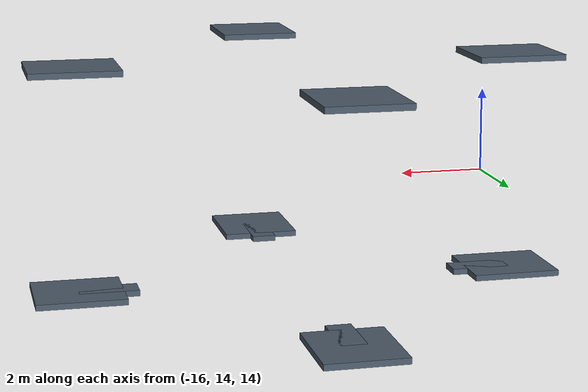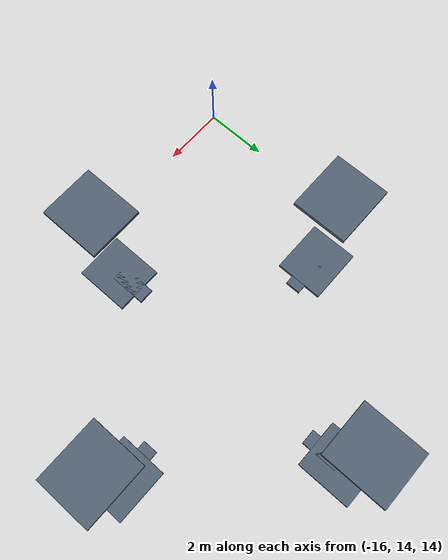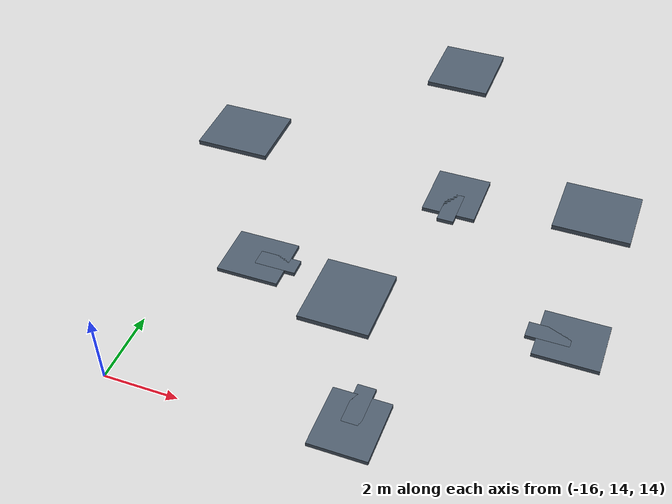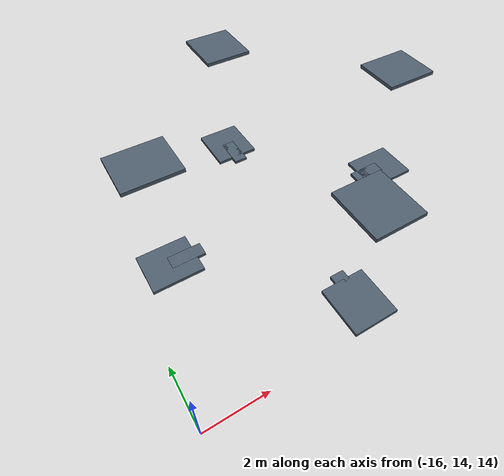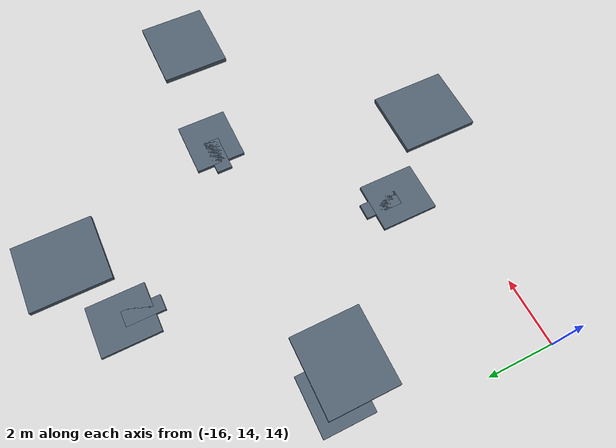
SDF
<sdf version="1.7">
 <world name="default">
  <light name="sun" type="directional">
   <pose>0 0 10 0 -0 0</pose>
   <diffuse>0.8 0.8 0.8 1</diffuse>
   <specular>0.2 0.2 0.2 1</specular>
   <attenuation>
    <range>1000</range>
    <constant>0.9</constant>
    <linear>0.01</linear>
    <quadratic>0.001</quadratic>
   </attenuation>
   <direction>-0.5 0.1 -0.9</direction>
   <spot><inner_angle>0</inner_angle><outer_angle>0</outer_angle><falloff>0</falloff></spot>
  </light>
  <gravity>0 0 -9.8</gravity>
  <magnetic_field>6e-06 2.3e-05 -4.2e-05</magnetic_field>
  <atmosphere type="adiabatic"/>
  <physics type="ode">
   <max_step_size>0.001</max_step_size>
   <real_time_factor>1</real_time_factor>
   <real_time_update_rate>1000</real_time_update_rate>
  </physics>
  <scene><ambient>0.4 0.4 0.4 1</ambient><background>0.7 0.7 0.7 1</background><shadows>1</shadows></scene>
  <spherical_coordinates>
   <surface_model>EARTH_WGS84</surface_model>
   <latitude_deg>0</latitude_deg>
   <longitude_deg>0</longitude_deg>
   <elevation>0</elevation>
   <heading_deg>0</heading_deg>
  </spherical_coordinates>
  <model name="helmet_sampling_bridge_north">
   <static>1</static>
   <link name="link">
    <collision name="bridge_collision">
     <pose>0 0 -0.06 0 -0 0</pose>
     <geometry><box><size>0.5 1.2 0.12</size></box></geometry>
    </collision>
    <visual name="bridge_visual">
     <pose>0 0 -0.06 0 -0 0</pose>
     <geometry><box><size>0.5 1.2 0.12</size></box></geometry>
     <material>
      <ambient>0.2 0.24 0.28 1</ambient>
      <diffuse>0.3 0.36 0.42 1</diffuse>
      <specular>0.15 0.15 0.15 1</specular>
     </material>
    </visual>
   </link>
   <pose>-10.0551 23.5904 13.306 0 -0 0</pose>
  </model>
  <model name="helmet_sampling_bridge_east">
   <static>1</static>
   <link name="link">
    <collision name="bridge_collision">
     <pose>0 0 -0.06 0 -0 0</pose>
     <geometry><box><size>0.5 1.2 0.12</size></box></geometry>
    </collision>
    <visual name="bridge_visual">
     <pose>0 0 -0.06 0 -0 0</pose>
     <geometry><box><size>0.5 1.2 0.12</size></box></geometry>
     <material>
      <ambient>0.2 0.24 0.28 1</ambient>
      <diffuse>0.3 0.36 0.42 1</diffuse>
      <specular>0.15 0.15 0.15 1</specular>
     </material>
    </visual>
   </link>
   <pose>-6.1751 19.7104 13.306 0 0 -1.5708</pose>
  </model>
  <model name="helmet_sampling_bridge_south">
   <static>1</static>
   <link name="link">
    <collision name="bridge_collision">
     <pose>0 0 -0.06 0 -0 0</pose>
     <geometry><box><size>0.5 1.2 0.12</size></box></geometry>
    </collision>
    <visual name="bridge_visual">
     <pose>0 0 -0.06 0 -0 0</pose>
     <geometry><box><size>0.5 1.2 0.12</size></box></geometry>
     <material>
      <ambient>0.2 0.24 0.28 1</ambient>
      <diffuse>0.3 0.36 0.42 1</diffuse>
      <specular>0.15 0.15 0.15 1</specular>
     </material>
    </visual>
   </link>
   <pose>-10.0551 15.8304 13.306 0 -0 -3.14159</pose>
  </model>
  <model name="helmet_sampling_bridge_west">
   <static>1</static>
   <link name="link">
    <collision name="bridge_collision">
     <pose>0 0 -0.06 0 -0 0</pose>
     <geometry><box><size>0.5 1.2 0.12</size></box></geometry>
    </collision>
    <visual name="bridge_visual">
     <pose>0 0 -0.06 0 -0 0</pose>
     <geometry><box><size>0.5 1.2 0.12</size></box></geometry>
     <material>
      <ambient>0.2 0.24 0.28 1</ambient>
      <diffuse>0.3 0.36 0.42 1</diffuse>
      <specular>0.15 0.15 0.15 1</specular>
     </material>
    </visual>
   </link>
   <pose>-13.9351 19.7104 13.306 0 -0 1.5708</pose>
  </model>
  <model name="helmet_sampling_platform_north">
   <static>1</static>
   <link name="link">
    <collision name="platform_collision">
     <pose>0 0 -0.06 0 -0 0</pose>
     <geometry><box><size>1.6 1.8 0.12</size></box></geometry>
    </collision>
    <visual name="platform_visual">
     <pose>0 0 -0.06 0 -0 0</pose>
     <geometry><box><size>1.6 1.8 0.12</size></box></geometry>
     <material>
      <ambient>0.2 0.24 0.28 1</ambient>
      <diffuse>0.3 0.36 0.42 1</diffuse>
      <specular>0.15 0.15 0.15 1</specular>
     </material>
    </visual>
   </link>
   <pose>-10.0551 24.1904 13.306 0 -0 0</pose>
  </model>
  <model name="helmet_sampling_platform_east">
   <static>1</static>
   <link name="link">
    <collision name="platform_collision">
     <pose>0 0 -0.06 0 -0 0</pose>
     <geometry><box><size>1.6 1.8 0.12</size></box></geometry>
    </collision>
    <visual name="platform_visual">
     <pose>0 0 -0.06 0 -0 0</pose>
     <geometry><box><size>1.6 1.8 0.12</size></box></geometry>
     <material>
      <ambient>0.2 0.24 0.28 1</ambient>
      <diffuse>0.3 0.36 0.42 1</diffuse>
      <specular>0.15 0.15 0.15 1</specular>
     </material>
    </visual>
   </link>
   <pose>-5.5751 19.7104 13.306 0 0 -1.5708</pose>
  </model>
  <model name="helmet_sampling_platform_south">
   <static>1</static>
   <link name="link">
    <collision name="platform_collision">
     <pose>0 0 -0.06 0 -0 0</pose>
     <geometry><box><size>1.6 1.8 0.12</size></box></geometry>
    </collision>
    <visual name="platform_visual">
     <pose>0 0 -0.06 0 -0 0</pose>
     <geometry><box><size>1.6 1.8 0.12</size></box></geometry>
     <material>
      <ambient>0.2 0.24 0.28 1</ambient>
      <diffuse>0.3 0.36 0.42 1</diffuse>
      <specular>0.15 0.15 0.15 1</specular>
     </material>
    </visual>
   </link>
   <pose>-10.0551 15.2304 13.306 0 -0 -3.14159</pose>
  </model>
  <model name="helmet_sampling_platform_west">
   <static>1</static>
   <link name="link">
    <collision name="platform_collision">
     <pose>0 0 -0.06 0 -0 0</pose>
     <geometry><box><size>1.6 1.8 0.12</size></box></geometry>
    </collision>
    <visual name="platform_visual">
     <pose>0 0 -0.06 0 -0 0</pose>
     <geometry><box><size>1.6 1.8 0.12</size></box></geometry>
     <material>
      <ambient>0.2 0.24 0.28 1</ambient>
      <diffuse>0.3 0.36 0.42 1</diffuse>
      <specular>0.15 0.15 0.15 1</specular>
     </material>
    </visual>
   </link>
   <pose>-14.5351 19.7104 13.306 0 -0 1.5708</pose>
  </model>
  <model name="helmet_platform_north">
   <static>1</static>
   <link name="link">
    <collision name="platform_collision">
     <pose>0 0 -0.06 0 -0 0</pose>
     <geometry><box><size>1.6 1.8 0.12</size></box></geometry>
    </collision>
    <visual name="platform_visual">
     <pose>0 0 -0.06 0 -0 0</pose>
     <geometry><box><size>1.6 1.8 0.12</size></box></geometry>
     <material>
      <ambient>0.2 0.24 0.28 1</ambient>
      <diffuse>0.3 0.36 0.42 1</diffuse>
      <specular>0.15 0.15 0.15 1</specular>
     </material>
    </visual>
   </link>
   <pose>-10.0551 24.1904 17.82 0 -0 0</pose>
  </model>
  <model name="helmet_platform_east">
   <static>1</static>
   <link name="link">
    <collision name="platform_collision">
     <pose>0 0 -0.06 0 -0 0</pose>
     <geometry><box><size>1.6 1.8 0.12</size></box></geometry>
    </collision>
    <visual name="platform_visual">
     <pose>0 0 -0.06 0 -0 0</pose>
     <geometry><box><size>1.6 1.8 0.12</size></box></geometry>
     <material>
      <ambient>0.2 0.24 0.28 1</ambient>
      <diffuse>0.3 0.36 0.42 1</diffuse>
      <specular>0.15 0.15 0.15 1</specular>
     </material>
    </visual>
   </link>
   <pose>-5.5751 19.7104 17.82 0 0 -1.5708</pose>
  </model>
  <model name="helmet_platform_south">
   <static>1</static>
   <link name="link">
    <collision name="platform_collision">
     <pose>0 0 -0.06 0 -0 0</pose>
     <geometry><box><size>1.6 1.8 0.12</size></box></geometry>
    </collision>
    <visual name="platform_visual">
     <pose>0 0 -0.06 0 -0 0</pose>
     <geometry><box><size>1.6 1.8 0.12</size></box></geometry>
     <material>
      <ambient>0.2 0.24 0.28 1</ambient>
      <diffuse>0.3 0.36 0.42 1</diffuse>
      <specular>0.15 0.15 0.15 1</specular>
     </material>
    </visual>
   </link>
   <pose>-10.0551 15.2304 17.82 0 -0 -3.14159</pose>
  </model>
  <model name="helmet_platform_west">
   <static>1</static>
   <link name="link">
    <collision name="platform_collision">
     <pose>0 0 -0.06 0 -0 0</pose>
     <geometry><box><size>1.6 1.8 0.12</size></box></geometry>
    </collision>
    <visual name="platform_visual">
     <pose>0 0 -0.06 0 -0 0</pose>
     <geometry><box><size>1.6 1.8 0.12</size></box></geometry>
     <material>
      <ambient>0.2 0.24 0.28 1</ambient>
      <diffuse>0.3 0.36 0.42 1</diffuse>
      <specular>0.15 0.15 0.15 1</specular>
     </material>
    </visual>
   </link>
   <pose>-14.5351 19.7104 17.82 0 -0 1.5708</pose>
  </model>
 </world>
</sdf>
